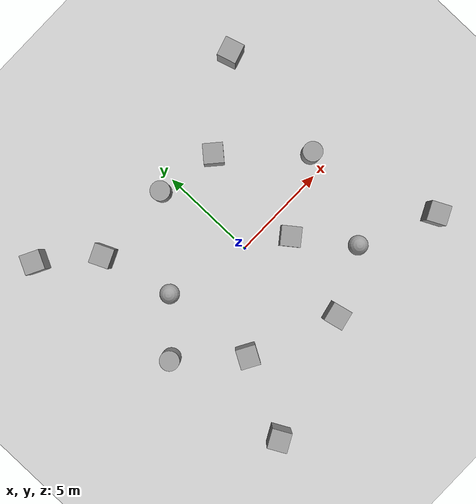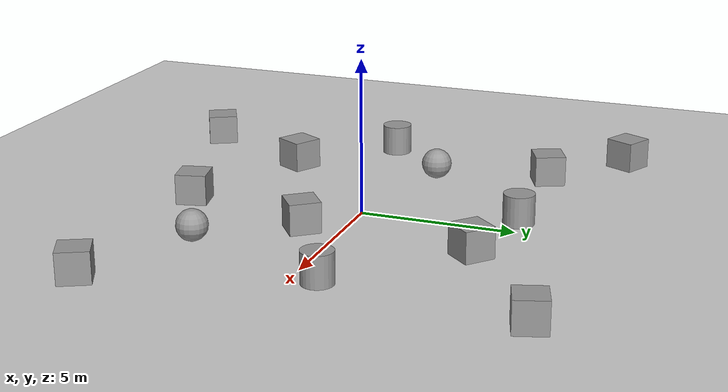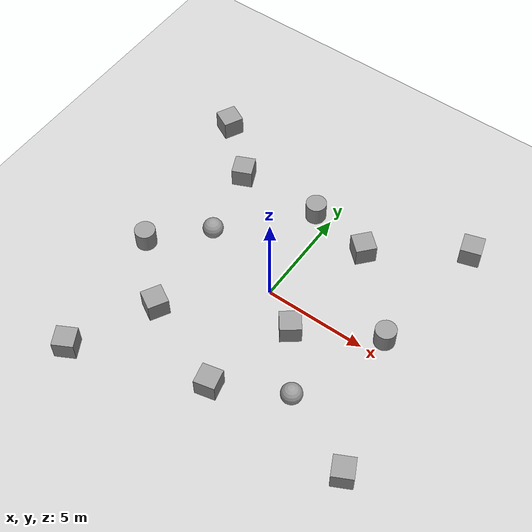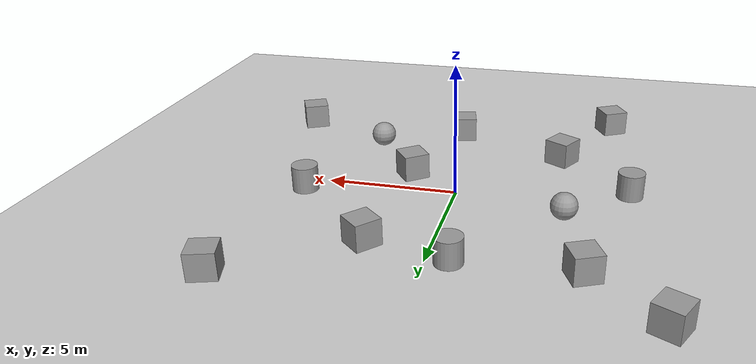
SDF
<sdf version="1.6">
 <world name="default">
  <light name="sun" type="directional">
   <pose>0 0 10 0 -0 0</pose>
   <diffuse>0.8 0.8 0.8 1</diffuse>
   <specular>0.1 0.1 0.1 1</specular>
   <attenuation>
    <range>1000</range>
    <constant>0.9</constant>
    <linear>0.01</linear>
    <quadratic>0.001</quadratic>
   </attenuation>
   <direction>-0.5 0.5 -1</direction>
  </light>
  <model name="ground_plane">
   <static>1</static>
   <link name="link">
    <collision name="collision">
     <geometry><plane><normal>0 0 1</normal><size>100 100</size></plane></geometry>
     <surface><friction><ode><mu>100</mu><mu2>50</mu2></ode></friction></surface>
    </collision>
    <visual name="visual">
     <cast_shadows>0</cast_shadows>
     <geometry><plane><normal>0 0 1</normal><size>100 100</size></plane></geometry>
     <material>
      <script><uri>file://media/materials/scripts/gazebo.material</uri><name>Gazebo/Grey</name></script>
     </material>
    </visual>
   </link>
  </model>
  <gravity>0 0 -9.8</gravity>
  <magnetic_field>6e-06 2.3e-05 -4.2e-05</magnetic_field>
  <atmosphere type="adiabatic"/>
  <physics name="default_physics" default="0" type="ode">
   <max_step_size>0.001</max_step_size>
   <real_time_factor>1</real_time_factor>
   <real_time_update_rate>1000</real_time_update_rate>
  </physics>
  <scene><ambient>0.4 0.4 0.4 1</ambient><background>0.7 0.7 0.7 1</background><shadows>1</shadows></scene>
  <spherical_coordinates>
   <surface_model>EARTH_WGS84</surface_model>
   <latitude_deg>0</latitude_deg>
   <longitude_deg>0</longitude_deg>
   <elevation>0</elevation>
   <heading_deg>0</heading_deg>
  </spherical_coordinates>
  <model name="unit_box_0">
   <pose>-3.70297 -3.74557 0.5 0 -0 2.62655</pose>
   <link name="link">
    <inertial>
     <mass>1</mass>
     <inertia>
      <ixx>0.166667</ixx>
      <ixy>0</ixy>
      <ixz>0</ixz>
      <iyy>0.166667</iyy>
      <iyz>0</iyz>
      <izz>0.166667</izz>
     </inertia>
    </inertial>
    <collision name="collision"><geometry><box><size>1 1 1</size></box></geometry></collision>
    <visual name="visual">
     <geometry><box><size>1 1 1</size></box></geometry>
     <material>
      <script><name>Gazebo/Grey</name><uri>file://media/materials/scripts/gazebo.material</uri></script>
     </material>
    </visual>
   </link>
  </model>
  <model name="unit_box_1">
   <pose>2.29257 4.29952 0.5 0 0 -2.29599</pose>
   <link name="link">
    <inertial>
     <mass>1</mass>
     <inertia>
      <ixx>0.166667</ixx>
      <ixy>0</ixy>
      <ixz>0</ixz>
      <iyy>0.166667</iyy>
      <iyz>0</iyz>
      <izz>0.166667</izz>
     </inertia>
    </inertial>
    <collision name="collision"><geometry><box><size>1 1 1</size></box></geometry></collision>
    <visual name="visual">
     <geometry><box><size>1 1 1</size></box></geometry>
     <material>
      <script><name>Gazebo/Grey</name><uri>file://media/materials/scripts/gazebo.material</uri></script>
     </material>
    </visual>
   </link>
  </model>
  <model name="unit_sphere_0">
   <pose>3.97095 -3.92866 0.5 0 -0 0</pose>
   <link name="link">
    <inertial>
     <mass>1</mass>
     <inertia><ixx>0.1</ixx><ixy>0</ixy><ixz>0</ixz><iyy>0.1</iyy><iyz>0</iyz><izz>0.1</izz></inertia>
    </inertial>
    <collision name="collision"><geometry><sphere><radius>0.5</radius></sphere></geometry></collision>
    <visual name="visual">
     <geometry><sphere><radius>0.5</radius></sphere></geometry>
     <material>
      <script><name>Gazebo/Grey</name><uri>file://media/materials/scripts/gazebo.material</uri></script>
     </material>
    </visual>
   </link>
  </model>
  <model name="unit_cylinder_0">
   <pose>5.67612 0.857896 0.499992 -3e-06 2e-06 0</pose>
   <link name="link">
    <inertial>
     <mass>1</mass>
     <inertia><ixx>0.145833</ixx><ixy>0</ixy><ixz>0</ixz><iyy>0.145833</iyy><iyz>0</iyz><izz>0.125</izz></inertia>
    </inertial>
    <collision name="collision">
     <geometry><cylinder><radius>0.5</radius><length>1</length></cylinder></geometry>
    </collision>
    <visual name="visual">
     <geometry><cylinder><radius>0.5</radius><length>1</length></cylinder></geometry>
     <material>
      <script><name>Gazebo/Grey</name><uri>file://media/materials/scripts/gazebo.material</uri></script>
     </material>
    </visual>
   </link>
  </model>
  <model name="unit_box_2">
   <pose>-5.04401 4.78362 0.499995 -0 1e-05 -1.15029</pose>
   <link name="link">
    <inertial>
     <mass>1</mass>
     <inertia>
      <ixx>0.166667</ixx>
      <ixy>0</ixy>
      <ixz>0</ixz>
      <iyy>0.166667</iyy>
      <iyz>0</iyz>
      <izz>0.166667</izz>
     </inertia>
    </inertial>
    <collision name="collision"><geometry><box><size>1 1 1</size></box></geometry></collision>
    <visual name="visual">
     <geometry><box><size>1 1 1</size></box></geometry>
     <material>
      <script><name>Gazebo/Grey</name><uri>file://media/materials/scripts/gazebo.material</uri></script>
     </material>
    </visual>
   </link>
  </model>
  <model name="unit_sphere_1">
   <pose>-4.15964 1.13321 0.5 0 -0 0</pose>
   <link name="link">
    <inertial>
     <mass>1</mass>
     <inertia><ixx>0.1</ixx><ixy>0</ixy><ixz>0</ixz><iyy>0.1</iyy><iyz>0</iyz><izz>0.1</izz></inertia>
    </inertial>
    <collision name="collision"><geometry><sphere><radius>0.5</radius></sphere></geometry></collision>
    <visual name="visual">
     <geometry><sphere><radius>0.5</radius></sphere></geometry>
     <material>
      <script><name>Gazebo/Grey</name><uri>file://media/materials/scripts/gazebo.material</uri></script>
     </material>
    </visual>
   </link>
  </model>
  <model name="unit_cylinder_1">
   <pose>-0.801232 4.90105 0.499993 -3e-06 2e-06 0</pose>
   <link name="link">
    <inertial>
     <mass>1</mass>
     <inertia><ixx>0.145833</ixx><ixy>0</ixy><ixz>0</ixz><iyy>0.145833</iyy><iyz>0</iyz><izz>0.125</izz></inertia>
    </inertial>
    <collision name="collision">
     <geometry><cylinder><radius>0.5</radius><length>1</length></cylinder></geometry>
    </collision>
    <visual name="visual">
     <geometry><cylinder><radius>0.5</radius><length>1</length></cylinder></geometry>
     <material>
      <script><name>Gazebo/Grey</name><uri>file://media/materials/scripts/gazebo.material</uri></script>
     </material>
    </visual>
   </link>
  </model>
  <model name="unit_box_3">
   <pose>0.746784 -5.53311 0.5 0 -0 1.79479</pose>
   <link name="link">
    <inertial>
     <mass>1</mass>
     <inertia>
      <ixx>0.166667</ixx>
      <ixy>0</ixy>
      <ixz>0</ixz>
      <iyy>0.166667</iyy>
      <iyz>0</iyz>
      <izz>0.166667</izz>
     </inertia>
    </inertial>
    <collision name="collision"><geometry><box><size>1 1 1</size></box></geometry></collision>
    <visual name="visual">
     <geometry><box><size>1 1 1</size></box></geometry>
     <material>
      <script><name>Gazebo/Grey</name><uri>file://media/materials/scripts/gazebo.material</uri></script>
     </material>
    </visual>
   </link>
  </model>
  <model name="unit_box_4">
   <pose>7.7384 -5.62999 0.5 0 0 -1.10748</pose>
   <link name="link">
    <inertial>
     <mass>1</mass>
     <inertia>
      <ixx>0.166667</ixx>
      <ixy>0</ixy>
      <ixz>0</ixz>
      <iyy>0.166667</iyy>
      <iyz>0</iyz>
      <izz>0.166667</izz>
     </inertia>
    </inertial>
    <collision name="collision"><geometry><box><size>1 1 1</size></box></geometry></collision>
    <visual name="visual">
     <geometry><box><size>1 1 1</size></box></geometry>
     <material>
      <script><name>Gazebo/Grey</name><uri>file://media/materials/scripts/gazebo.material</uri></script>
     </material>
    </visual>
   </link>
  </model>
  <model name="unit_cylinder_2">
   <pose>-6.45584 -1.11033 0.499993 -3e-06 3e-06 0</pose>
   <link name="link">
    <inertial>
     <mass>1</mass>
     <inertia><ixx>0.145833</ixx><ixy>0</ixy><ixz>0</ixz><iyy>0.145833</iyy><iyz>0</iyz><izz>0.125</izz></inertia>
    </inertial>
    <collision name="collision">
     <geometry><cylinder><radius>0.5</radius><length>1</length></cylinder></geometry>
    </collision>
    <visual name="visual">
     <geometry><cylinder><radius>0.5</radius><length>1</length></cylinder></geometry>
     <material>
      <script><name>Gazebo/Grey</name><uri>file://media/materials/scripts/gazebo.material</uri></script>
     </material>
    </visual>
   </link>
  </model>
  <model name="unit_box_5">
   <pose>6.49481 7.13218 0.5 0 -0 1.86394</pose>
   <link name="link">
    <inertial>
     <mass>1</mass>
     <inertia>
      <ixx>0.166667</ixx>
      <ixy>0</ixy>
      <ixz>0</ixz>
      <iyy>0.166667</iyy>
      <iyz>0</iyz>
      <izz>0.166667</izz>
     </inertia>
    </inertial>
    <collision name="collision"><geometry><box><size>1 1 1</size></box></geometry></collision>
    <visual name="visual">
     <geometry><box><size>1 1 1</size></box></geometry>
     <material>
      <script><name>Gazebo/Grey</name><uri>file://media/materials/scripts/gazebo.material</uri></script>
     </material>
    </visual>
   </link>
  </model>
  <model name="unit_box_6">
   <pose>1.98401 -1.211 0.5 0 -0 0.653575</pose>
   <link name="link">
    <inertial>
     <mass>1</mass>
     <inertia>
      <ixx>0.166667</ixx>
      <ixy>0</ixy>
      <ixz>0</ixz>
      <iyy>0.166667</iyy>
      <iyz>0</iyz>
      <izz>0.166667</izz>
     </inertia>
    </inertial>
    <collision name="collision"><geometry><box><size>1 1 1</size></box></geometry></collision>
    <visual name="visual">
     <geometry><box><size>1 1 1</size></box></geometry>
     <material>
      <script><name>Gazebo/Grey</name><uri>file://media/materials/scripts/gazebo.material</uri></script>
     </material>
    </visual>
   </link>
  </model>
  <model name="unit_box_7">
   <pose>-5.5775 -7.6428 0.5 0 -0 0.487758</pose>
   <link name="link">
    <inertial>
     <mass>1</mass>
     <inertia>
      <ixx>0.166667</ixx>
      <ixy>0</ixy>
      <ixz>0</ixz>
      <iyy>0.166667</iyy>
      <iyz>0</iyz>
      <izz>0.166667</izz>
     </inertia>
    </inertial>
    <collision name="collision"><geometry><box><size>1 1 1</size></box></geometry></collision>
    <visual name="visual">
     <geometry><box><size>1 1 1</size></box></geometry>
     <material>
      <script><name>Gazebo/Grey</name><uri>file://media/materials/scripts/gazebo.material</uri></script>
     </material>
    </visual>
   </link>
  </model>
  <model name="unit_box_8">
   <pose>-7.58773 6.99678 0.5 0 0 -0.470346</pose>
   <link name="link">
    <inertial>
     <mass>1</mass>
     <inertia>
      <ixx>0.166667</ixx>
      <ixy>0</ixy>
      <ixz>0</ixz>
      <iyy>0.166667</iyy>
      <iyz>0</iyz>
      <izz>0.166667</izz>
     </inertia>
    </inertial>
    <collision name="collision"><geometry><box><size>1 1 1</size></box></geometry></collision>
    <visual name="visual">
     <geometry><box><size>1 1 1</size></box></geometry>
     <material>
      <script><name>Gazebo/Grey</name><uri>file://media/materials/scripts/gazebo.material</uri></script>
     </material>
    </visual>
   </link>
  </model>
 </world>
</sdf>
